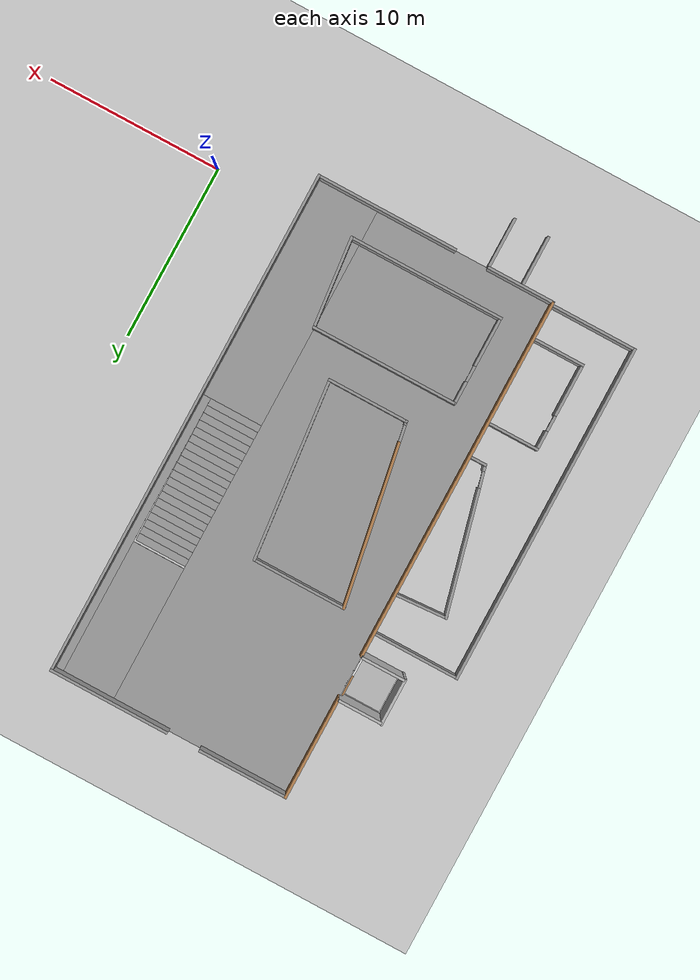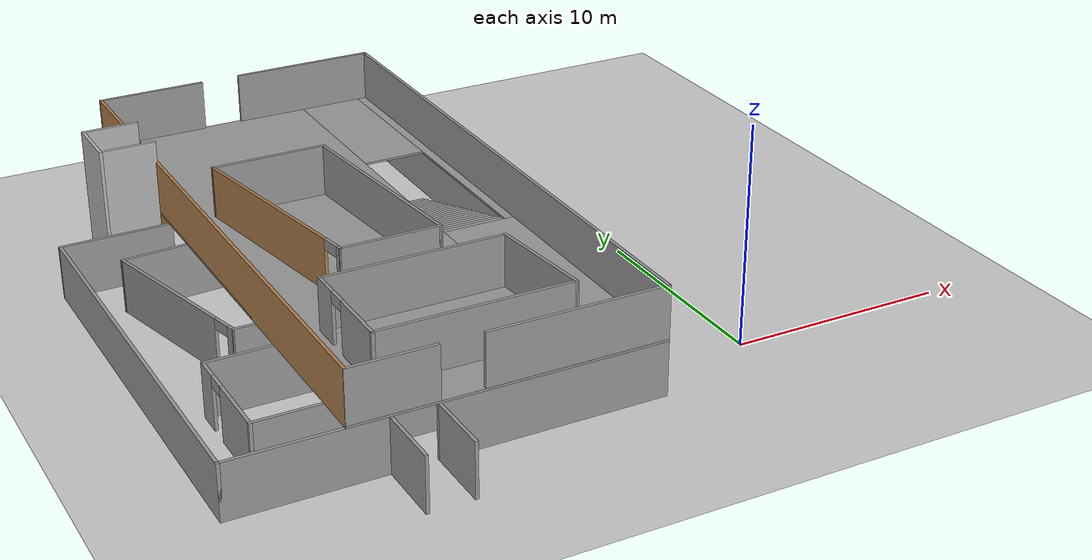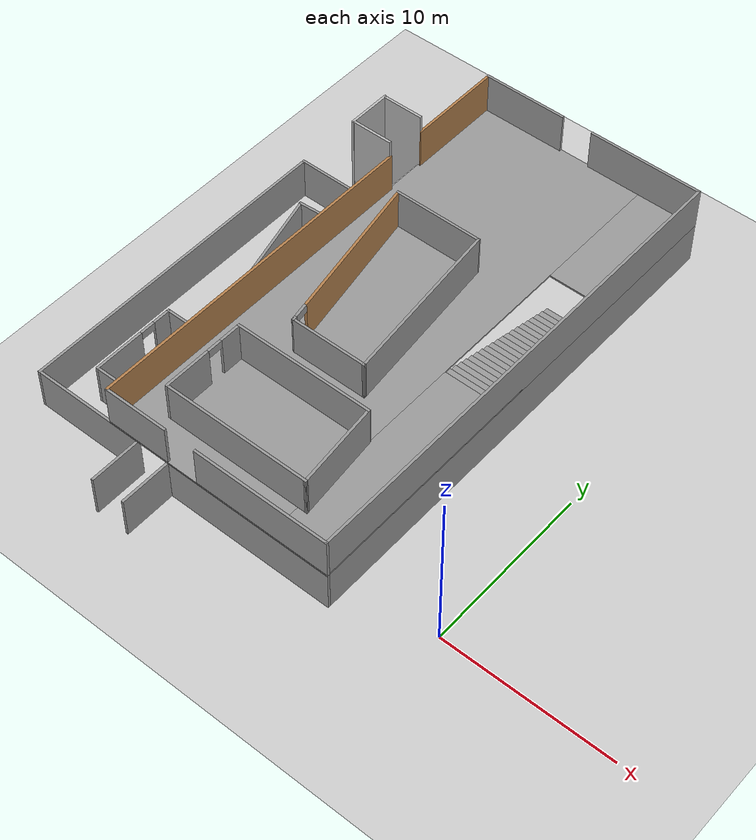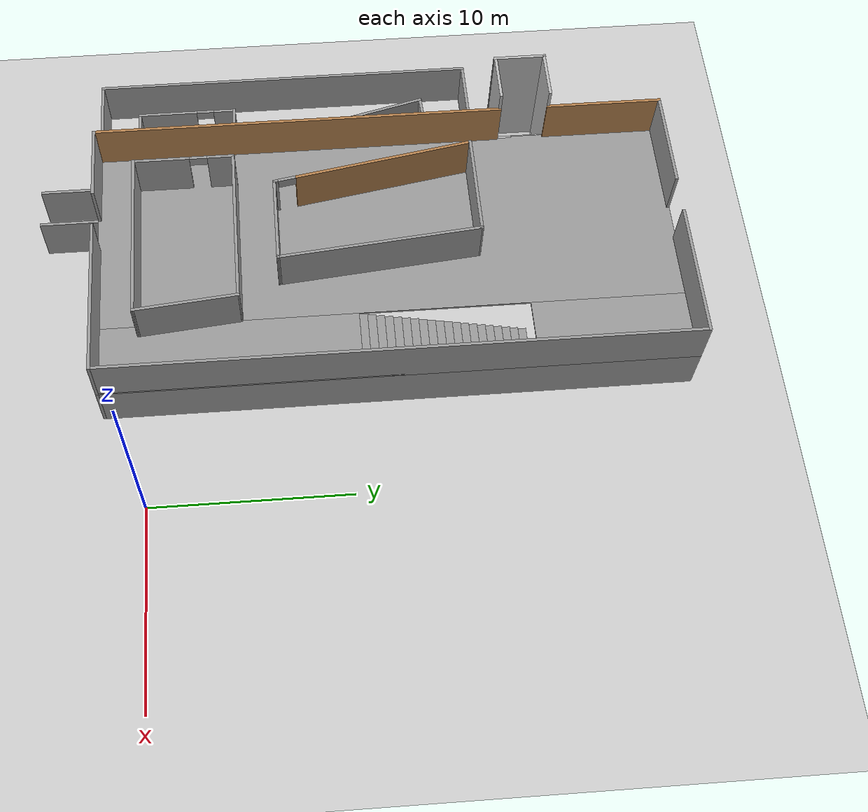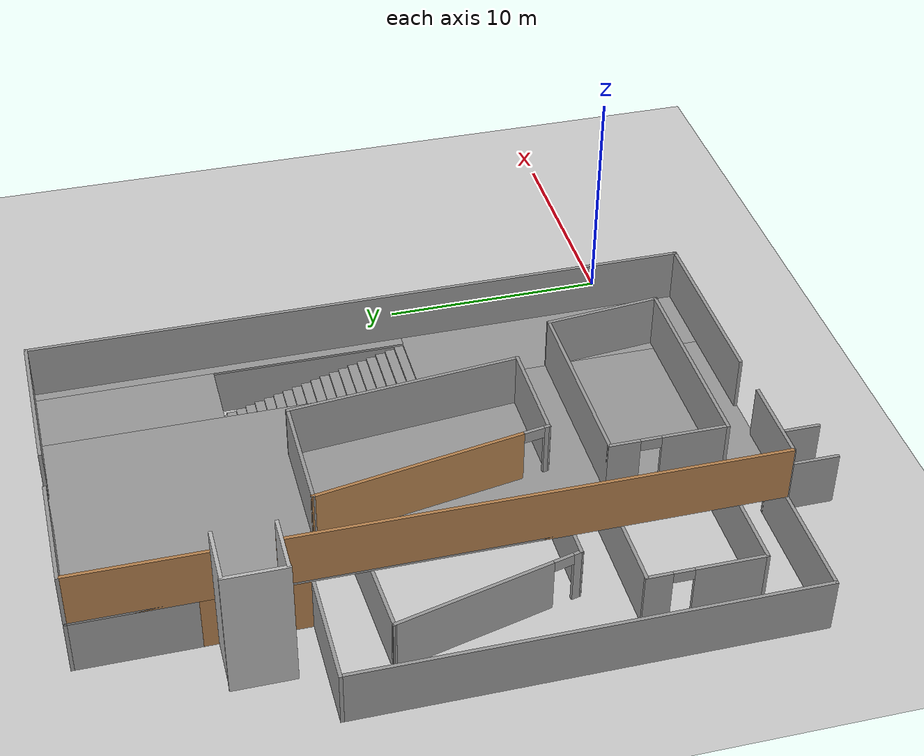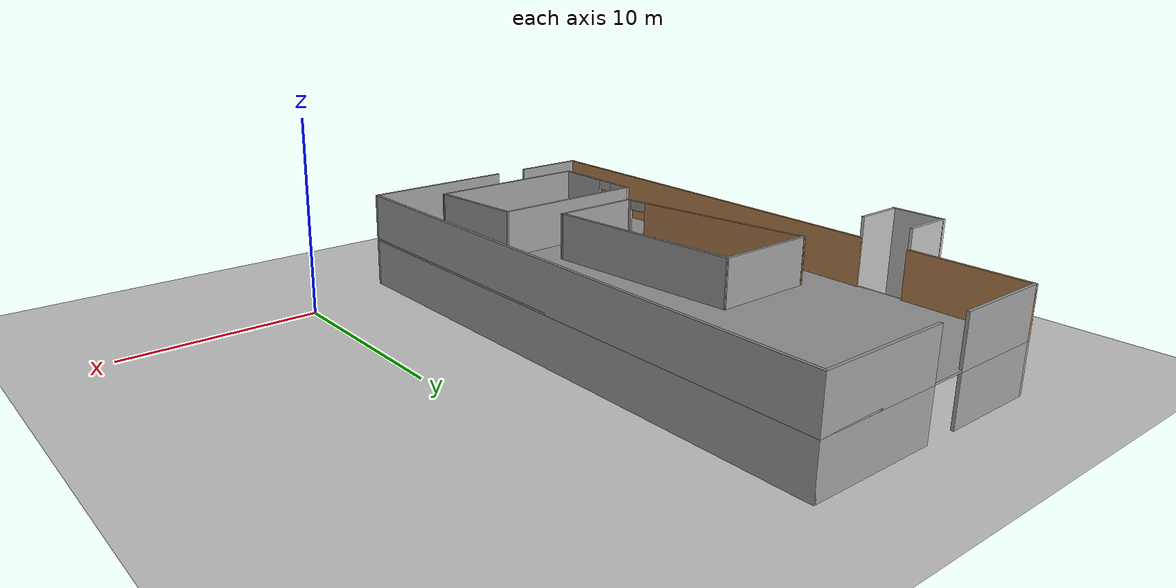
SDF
<?xml version="1.0" ?>
<sdf version="1.5">
  <world name="default">

    <!-- A global light source -->
    <include>
      <uri>model://sun</uri>
    </include>

    <!-- A ground plane -->
    <include>
      <uri>model://ground_plane</uri>
    </include>

    <!-- World plugin that publishes event messages.
         The topics used in these messages match up with topics used by the
         plugin in the elevator model below.
    -->
    <plugin filename="libSimEventsPlugin.so" name="elevator_event_plugin">
      <!-- Region on the ground floor, in front of the elevator -->
      <region>
        <name>region1</name>
        <volume>
          <min>-18.88 20 1</min>
          <max>-18.5 20.3 1.25</max>
        </volume>
      </region>

         <!-- Region on the ground floor inside the elevator-->
      <region>
        <name>region1_inside</name>
        <volume>
          <min>-19.7 19.1 0</min>
          <max>-19.1 19.8 1</max>
        </volume>
      </region>

          <!-- Region on the first floor inside the elevator-->
      <region>
        <name>region2_inside</name>
        <volume>
          <min>-19.7 19.1 2.58</min>
          <max>-19.1 19.8 2.8</max>
        </volume>
      </region>

      <!-- Region on the first floor, in front of the elevator -->
      <region>
        <name>region2</name>
        <volume>
          <min>-18.88 20 3.6</min>
          <max>-18.5 20.3 3.8</max>
        </volume>
      </region>

      <!-- Event publisher for ground floor-->
      <event>
        <name>region1_event</name>
        <type>occupied</type>
        <region>region1</region>
        <topic>~/elevator</topic>
        <msg_data>0</msg_data>
      </event>

      <!-- Event publisher for first floor-->
      <event>
        <name>region2_event</name>
        <type>occupied</type>
        <region>region2</region>

        <topic>~/elevator</topic>
        <msg_data>1</msg_data>
      </event>

      <!-- Event publisher up to first floor-->
      <event>
        <name>region2_1_event</name>
        <type>occupied</type>

        <region>region1_inside</region>
        <topic>~/elevator</topic>
        <msg_data>1</msg_data>
      </event>

       <!-- Event publisher down to ground floor-->
      <event>
        <name>region1_2_event</name>
        <type>occupied</type>
        <region>region2_inside</region>
        <topic>~/elevator</topic>
        <msg_data>0</msg_data>
      </event>
    </plugin>

    <!-- The elevator car -->
    <model name="elevator">
      <pose>-20 20 0.001 0 0 0</pose>
      <link name="link">
        <inertial>
          <mass>800</mass>
        </inertial>

        <collision name="floor_collision">
          <geometry>
            <box>
              <size>2.25 2.25 0.001</size>
            </box>
          </geometry>
        </collision>
        <visual name="floor_visual">
          <geometry>
            <box>
              <size>2.25 2.25 0.001</size>
            </box>
          </geometry>
        </visual>

        <!-- wall1_collision is the wall to the right of the door, when
             facing the door -->
        <collision name="wall1_collision">
          <pose>1.0745 0.5725 1.125 0 0 0</pose>
          <geometry>
            <box>
              <size>0.1 1.15 2.25</size>
            </box>
          </geometry>
        </collision>
        <visual name="wall1_visual">
          <pose>1.0745 0.5725 1.125 0 0 0</pose>
          <geometry>
            <box>
              <size>0.1 1.15 2.25</size>
            </box>
          </geometry>
          <material>
            <script>
              <name>Gazebo/Wood </name>
            </script>
          </material>
        </visual>

             <collision name="wall1_collision_bot">
          <pose>1.12 0.3 1.125 0 0 0</pose>
          <geometry>
            <box>
              <size>0.01 0.09 0.36</size>
            </box>
          </geometry>
        </collision>
        <visual name="wall1_visual_bot">
          <pose>1.12 0.25 1.125 0 0 0</pose>
          <geometry>
            <box>
              <size>0.01 0.09 0.36</size>
            </box>
          </geometry>
          <material>
                      <script>
            <uri>model://elevator_shaft/materials/scripts</uri>
            <uri>model://elevator_shaft/materials/textures</uri>
            <name>Up_down/Diffuse</name>
          </script>
          </material>
        </visual>

        <!-- wall2_collision is the wall to the left of the door, when
             facing the door -->
        <collision name="wall2_collision">
          <pose>1.0745 -1.0625 1.125 0 0 0</pose>
          <geometry>
            <box>
              <size>0.1 0.125 2.25</size>
            </box>
          </geometry>
        </collision>
        <visual name="wall2_visual">
          <pose>1.0745 -1.0625 1.125 0 0 0</pose>
          <geometry>
            <box>
              <size>0.1 0.125 2.25</size>
            </box>
          </geometry>
          <material>
            <script>
              <name>Gazebo/Wood </name>
            </script>
          </material>
        </visual>
      </link>

      <link name="door">
        <pose>1.0745 -0.5 1.125 0 0 0</pose>
        <collision name="collision">
          <geometry>
            <box>
              <size>0.08 1.0 2.25</size>
            </box>
          </geometry>
        </collision>
        <visual name="visual">
        <material>
          <script>
            <uri>model://elevator_door/materials/scripts</uri>
            <uri>model://elevator_door/materials/textures</uri>
            <name>Elevator_door/Picture</name>
          </script>
          <shader type='pixel'>
            <normal_map>__default__</normal_map>
          </shader>
          <ambient>1 1 1 1</ambient>
          <diffuse>1 1 1 1</diffuse>
          <specular>0 0 0 1</specular>
          <emissive>0 0 0 1</emissive>
        </material>
          <geometry>
            <box>
              <size>0.08 1.0 2.25</size>
            </box>
          </geometry>
        </visual>
      </link>

      <joint name="door" type="prismatic">
        <parent>link</parent>
        <child>door</child>
        <axis>
          <xyz>0 1 0</xyz>
          <limit>
            <lower>0</lower>
            <upper>1</upper>
            <effort>0.525</effort>
          </limit>

          <dynamics>
            <damping>1</damping>
          </dynamics>
        </axis>
      </joint>

      <joint name="lift" type="prismatic">
        <parent>world</parent>
        <child>link</child>
        <axis>
          <xyz>0 0 1</xyz>
          <limit>
            <lower>0</lower>
            <upper>10</upper>
            <effort>100000</effort>
          </limit>

          <dynamics>
            <damping>50</damping>
          </dynamics>
        </axis>
        <physics>
          <ode>
            <implicit_spring_damper>1</implicit_spring_damper>
          </ode>
        </physics>
      </joint>

      <!-- Plugin to control the elevator -->
      <plugin filename="libElevatorPlugin.so" name="elevator_plugin">
        <lift_joint>elevator::lift</lift_joint>
        <door_joint>elevator::door</door_joint>
        <floor_height>2.675</floor_height>

        <!-- Time the elevator door will stay open in seconds -->
        <door_wait_time>10</door_wait_time>

        <!-- This topic is used to control the elevator -->
        <topic>~/elevator</topic>
      </plugin>
    </model>

    <!-- Elevator shaft -->
    <model name="elevator_shaft">
        <pose>-20 20 0.00 0 0 0</pose>
      <static>true</static>
      <link name="link">
        <collision name="shaft_wall1_collision">
          <pose>0 1.25 3 0 0 0</pose>
          <geometry>
            <box>
              <size>2.5 0.15 6</size>
            </box>
          </geometry>
        </collision>
        <visual name="shaft_wall1_visual">
          <pose>0 1.25 3 0 0 0</pose>
          <geometry>
            <box>
              <size>2.5 0.15 6</size>
            </box>
          </geometry>
        </visual>

        <collision name="shaft_wall2_collision">
          <pose>0 -1.25 3 0 0 0</pose>
          <geometry>
            <box>
              <size>2.5 0.15 6</size>
            </box>
          </geometry>
        </collision>
        <visual name="shaft_wall2_visual">
          <pose>0 -1.25 3 0 0 0</pose>
          <geometry>
            <box>
              <size>2.5 0.15 6</size>
            </box>
          </geometry>
        </visual>

        <collision name="shaft_wall3_collision">
          <pose>-1.25 0 3 0 0 0</pose>
          <geometry>
            <box>
              <size>0.15 2.7 6</size>
            </box>
          </geometry>
        </collision>
        <visual name="shaft_wall3_visual">
          <pose>-1.25 0 3 0 0 0</pose>
          <geometry>
            <box>
              <size>0.15 2.7 6</size>
            </box>
          </geometry>
        </visual>

        <collision name="floor0_collision">
          <pose>1.19 0 0.001 0 0 0</pose>
          <geometry>
            <box>
              <size>0.12 2.5 0.001</size>
            </box>
          </geometry>
        </collision>
        <visual name="floor0_visual">
          <pose>1.19 0 0.001 0 0 0</pose>
          <geometry>
            <box>
              <size>0.12 2.5 0.001</size>
            </box>
          </geometry>
        </visual>

        <collision name="floor1_collision">
          <pose>1.19 0 2.525 0 0 0</pose>
          <geometry>
            <box>
              <size>0.12 2.5 0.15</size>
            </box>
          </geometry>
        </collision>
        <visual name="floor1_visual">
          <pose>1.19 0 2.525 0 0 0</pose>
          <geometry>
            <box>
              <size>0.12 2.5 0.15</size>
            </box>
          </geometry>
        </visual>
      </link>
    </model>

  <model name='elevator_2.5'>
    <pose frame=''>-18.75 20 0 0 -0 0</pose>
    <link name='Wall_0'>
      <collision name='Wall_0_Collision'>
        <geometry>
          <box>
            <size>1.4 0.15 2.5</size>
          </box>
        </geometry>
        <pose frame=''>0 0 1.25 0 -0 0</pose>
      </collision>
      <visual name='Wall_0_Visual'>
        <pose frame=''>0 0 1.25 0 -0 0</pose>
          <meta>
            <layer>0</layer>
          </meta>
        <geometry>
          <box>
            <size>1.4 0.15 2.5</size>
          </box>
        </geometry>
       <material>
            <script>
              <name>Gazebo/Wood </name>
            </script>
          </material>
      </visual>
      <pose frame=''>0 -1.875 0 0 0 -1.5708</pose>
    </link>
    <link name='Wall_2'>
      <collision name='Wall_2_Collision'>
        <geometry>
          <box>
            <size>1.4 0.15 2.5</size>
          </box>
        </geometry>
        <pose frame=''>0 0 1.25 0 -0 0</pose>
      </collision>
      <visual name='Wall_2_Visual'>
        <pose frame=''>0 0 1.25 0 -0 0</pose>
        <geometry>
          <box>
            <size>1.4 0.15 2.5</size>
          </box>
        </geometry>
        <material>
            <script>
              <name>Gazebo/Wood </name>
            </script>
          </material>
      </visual>
      <pose frame=''>0 1.875 0 0 0 -1.5708</pose>
    </link>
    <static>1</static>
  </model>

  <model name='Building_37'>
    <pose frame=''>-14.375 11 0 0 -0 0</pose>
    <link name='Floor_0'>
      <pose frame=''>2.5 1.3455 2.5 0 -0 0</pose>
      <visual name='Floor_0_Visual_0'>
        <pose frame=''>-1.7875 0.15 0.05 0 -0 0</pose>
          <meta>
            <layer>1</layer>
          </meta>
        <geometry>
          <box>
            <size>10.325 29.15 0.1</size>
          </box>
        </geometry>
        <material>
          <script>
            <uri>file://media/materials/scripts/gazebo.material</uri>
            <name>Gazebo/Grey</name>
          </script>
          <ambient>1 1 1 1</ambient>
        </material>
      </visual>
      <collision name='Floor_0_Collision_0'>
        <geometry>
          <box>
            <size>10.325 29.15 0.1</size>
          </box>
        </geometry>
        <pose frame=''>-1.7875 0.15 0.05 0 -0 0</pose>
      </collision>
      <visual name='Floor_0_Visual_1'>
        <pose frame=''>5.1625 -8.0 0.05 0 -0 0</pose>
          <meta>
            <layer>1</layer>
          </meta>
        <geometry>
          <box>
            <size>3.575 12.85 0.1</size>
          </box>
        </geometry>
        <material>
          <script>
            <uri>file://media/materials/scripts/gazebo.material</uri>
            <name>Gazebo/Grey</name>
          </script>
          <ambient>1 1 1 1</ambient>
        </material>
      </visual>
      <collision name='Floor_0_Collision_1'>
        <geometry>
          <box>
            <size>3.575 12.85 0.1</size>
          </box>
        </geometry>
        <pose frame=''>5.1625 -8.0 0.05 0 -0 0</pose>
      </collision>
      <visual name='Floor_0_Visual_2'>
        <pose frame=''>6.6625 6.567 0.05 0 -0 0</pose>
          <meta>
            <layer>1</layer>
          </meta>
        <geometry>
          <box>
            <size>0.575 16.325 0.1</size>
          </box>
        </geometry>
        <material>
          <script>
            <uri>file://media/materials/scripts/gazebo.material</uri>
            <name>Gazebo/Grey</name>
          </script>
          <ambient>1 1 1 1</ambient>
        </material>
      </visual>
      <collision name='Floor_0_Collision_2'>
        <geometry>
          <box>
            <size>0.575 16.325 0.1</size>
          </box>
        </geometry>
        <pose frame=''>6.6625 6.567 0.05 0 -0 0</pose>
      </collision>
      <visual name='Floor_0_Visual_3'>
        <pose frame=''>4.875 10.817 0.05 0 -0 0</pose>
          <meta>
            <layer>1</layer>
          </meta>
        <geometry>
          <box>
            <size>3 7.825 0.1</size>
          </box>
        </geometry>
        <material>
          <script>
            <uri>file://media/materials/scripts/gazebo.material</uri>
            <name>Gazebo/Grey</name>
          </script>
          <ambient>1 1 1 1</ambient>
        </material>
      </visual>
      <collision name='Floor_0_Collision_3'>
        <geometry>
          <box>
            <size>3 7.825 0.1</size>
          </box>
        </geometry>
        <pose frame=''>4.875 10.817 0.05 0 -0 0</pose>
      </collision>
    </link>
    <link name='Stairs_1'>
      <visual name='Stairs_1_Visual_0'>
        <pose frame=''>7.375 8.0375 0.0625 0 -0 0</pose>
          <meta>
            <layer>2</layer>
          </meta>
        <geometry>
          <box>
            <size>3 0.425 0.125</size>
          </box>
        </geometry>
        <material>
          <script>
            <uri>file://media/materials/scripts/gazebo.material</uri>
            <name>Gazebo/Grey</name>
          </script>
          <ambient>1 1 1 1</ambient>
        </material>
      </visual>
      <collision name='Stairs_1_Collision_0'>
        <geometry>
          <box>
            <size>3 0.425 0.125</size>
          </box>
        </geometry>
        <pose frame=''>7.375 8.0375 0.0625 0 -0 0</pose>
      </collision>
      <visual name='Stairs_1_Visual_1'>
        <pose frame=''>7.375 7.6125 0.1875 0 -0 0</pose>
          <meta>
            <layer>2</layer>
          </meta>
        <geometry>
          <box>
            <size>3 0.425 0.125</size>
          </box>
        </geometry>
        <material>
          <script>
            <uri>file://media/materials/scripts/gazebo.material</uri>
            <name>Gazebo/Grey</name>
          </script>
          <ambient>1 1 1 1</ambient>
        </material>
      </visual>
      <collision name='Stairs_1_Collision_1'>
        <geometry>
          <box>
            <size>3 0.425 0.125</size>
          </box>
        </geometry>
        <pose frame=''>7.375 7.6125 0.1875 0 -0 0</pose>
      </collision>
      <visual name='Stairs_1_Visual_2'>
        <pose frame=''>7.375 7.1875 0.3125 0 -0 0</pose>
          <meta>
            <layer>2</layer>
          </meta>
        <geometry>
          <box>
            <size>3 0.425 0.125</size>
          </box>
        </geometry>
        <material>
          <script>
            <uri>file://media/materials/scripts/gazebo.material</uri>
            <name>Gazebo/Grey</name>
          </script>
          <ambient>1 1 1 1</ambient>
        </material>
      </visual>
      <collision name='Stairs_1_Collision_2'>
        <geometry>
          <box>
            <size>3 0.425 0.125</size>
          </box>
        </geometry>
        <pose frame=''>7.375 7.1875 0.3125 0 -0 0</pose>
      </collision>
      <visual name='Stairs_1_Visual_3'>
        <pose frame=''>7.375 6.7625 0.4375 0 -0 0</pose>
          <meta>
            <layer>2</layer>
          </meta>
        <geometry>
          <box>
            <size>3 0.425 0.125</size>
          </box>
        </geometry>
        <material>
          <script>
            <uri>file://media/materials/scripts/gazebo.material</uri>
            <name>Gazebo/Grey</name>
          </script>
          <ambient>1 1 1 1</ambient>
        </material>
      </visual>
      <collision name='Stairs_1_Collision_3'>
        <geometry>
          <box>
            <size>3 0.425 0.125</size>
          </box>
        </geometry>
        <pose frame=''>7.375 6.7625 0.4375 0 -0 0</pose>
      </collision>
      <visual name='Stairs_1_Visual_4'>
        <pose frame=''>7.375 6.3375 0.5625 0 -0 0</pose>
          <meta>
            <layer>2</layer>
          </meta>
        <geometry>
          <box>
            <size>3 0.425 0.125</size>
          </box>
        </geometry>
        <material>
          <script>
            <uri>file://media/materials/scripts/gazebo.material</uri>
            <name>Gazebo/Grey</name>
          </script>
          <ambient>1 1 1 1</ambient>
        </material>
      </visual>
      <collision name='Stairs_1_Collision_4'>
        <geometry>
          <box>
            <size>3 0.425 0.125</size>
          </box>
        </geometry>
        <pose frame=''>7.375 6.3375 0.5625 0 -0 0</pose>
      </collision>
      <visual name='Stairs_1_Visual_5'>
        <pose frame=''>7.375 5.9125 0.6875 0 -0 0</pose>
          <meta>
            <layer>2</layer>
          </meta>
        <geometry>
          <box>
            <size>3 0.425 0.125</size>
          </box>
        </geometry>
        <material>
          <script>
            <uri>file://media/materials/scripts/gazebo.material</uri>
            <name>Gazebo/Grey</name>
          </script>
          <ambient>1 1 1 1</ambient>
        </material>
      </visual>
      <collision name='Stairs_1_Collision_5'>
        <geometry>
          <box>
            <size>3 0.425 0.125</size>
          </box>
        </geometry>
        <pose frame=''>7.375 5.9125 0.6875 0 -0 0</pose>
      </collision>
      <visual name='Stairs_1_Visual_6'>
        <pose frame=''>7.375 5.4875 0.8125 0 -0 0</pose>
          <meta>
            <layer>2</layer>
          </meta>
        <geometry>
          <box>
            <size>3 0.425 0.125</size>
          </box>
        </geometry>
        <material>
          <script>
            <uri>file://media/materials/scripts/gazebo.material</uri>
            <name>Gazebo/Grey</name>
          </script>
          <ambient>1 1 1 1</ambient>
        </material>
      </visual>
      <collision name='Stairs_1_Collision_6'>
        <geometry>
          <box>
            <size>3 0.425 0.125</size>
          </box>
        </geometry>
        <pose frame=''>7.375 5.4875 0.8125 0 -0 0</pose>
      </collision>
      <visual name='Stairs_1_Visual_7'>
        <pose frame=''>7.375 5.0625 0.9375 0 -0 0</pose>
          <meta>
            <layer>2</layer>
          </meta>
        <geometry>
          <box>
            <size>3 0.425 0.125</size>
          </box>
        </geometry>
        <material>
          <script>
            <uri>file://media/materials/scripts/gazebo.material</uri>
            <name>Gazebo/Grey</name>
          </script>
          <ambient>1 1 1 1</ambient>
        </material>
      </visual>
      <collision name='Stairs_1_Collision_7'>
        <geometry>
          <box>
            <size>3 0.425 0.125</size>
          </box>
        </geometry>
        <pose frame=''>7.375 5.0625 0.9375 0 -0 0</pose>
      </collision>
      <visual name='Stairs_1_Visual_8'>
        <pose frame=''>7.375 4.6375 1.0625 0 -0 0</pose>
          <meta>
            <layer>2</layer>
          </meta>
        <geometry>
          <box>
            <size>3 0.425 0.125</size>
          </box>
        </geometry>
        <material>
          <script>
            <uri>file://media/materials/scripts/gazebo.material</uri>
            <name>Gazebo/Grey</name>
          </script>
          <ambient>1 1 1 1</ambient>
        </material>
      </visual>
      <collision name='Stairs_1_Collision_8'>
        <geometry>
          <box>
            <size>3 0.425 0.125</size>
          </box>
        </geometry>
        <pose frame=''>7.375 4.6375 1.0625 0 -0 0</pose>
      </collision>
      <visual name='Stairs_1_Visual_9'>
        <pose frame=''>7.375 4.2125 1.1875 0 -0 0</pose>
          <meta>
            <layer>2</layer>
          </meta>
        <geometry>
          <box>
            <size>3 0.425 0.125</size>
          </box>
        </geometry>
        <material>
          <script>
            <uri>file://media/materials/scripts/gazebo.material</uri>
            <name>Gazebo/Grey</name>
          </script>
          <ambient>1 1 1 1</ambient>
        </material>
      </visual>
      <collision name='Stairs_1_Collision_9'>
        <geometry>
          <box>
            <size>3 0.425 0.125</size>
          </box>
        </geometry>
        <pose frame=''>7.375 4.2125 1.1875 0 -0 0</pose>
      </collision>
      <visual name='Stairs_1_Visual_10'>
        <pose frame=''>7.375 3.7875 1.3125 0 -0 0</pose>
          <meta>
            <layer>2</layer>
          </meta>
        <geometry>
          <box>
            <size>3 0.425 0.125</size>
          </box>
        </geometry>
        <material>
          <script>
            <uri>file://media/materials/scripts/gazebo.material</uri>
            <name>Gazebo/Grey</name>
          </script>
          <ambient>1 1 1 1</ambient>
        </material>
      </visual>
      <collision name='Stairs_1_Collision_10'>
        <geometry>
          <box>
            <size>3 0.425 0.125</size>
          </box>
        </geometry>
        <pose frame=''>7.375 3.7875 1.3125 0 -0 0</pose>
      </collision>
      <visual name='Stairs_1_Visual_11'>
        <pose frame=''>7.375 3.3625 1.4375 0 -0 0</pose>
          <meta>
            <layer>2</layer>
          </meta>
        <geometry>
          <box>
            <size>3 0.425 0.125</size>
          </box>
        </geometry>
        <material>
          <script>
            <uri>file://media/materials/scripts/gazebo.material</uri>
            <name>Gazebo/Grey</name>
          </script>
          <ambient>1 1 1 1</ambient>
        </material>
      </visual>
      <collision name='Stairs_1_Collision_11'>
        <geometry>
          <box>
            <size>3 0.425 0.125</size>
          </box>
        </geometry>
        <pose frame=''>7.375 3.3625 1.4375 0 -0 0</pose>
      </collision>
      <visual name='Stairs_1_Visual_12'>
        <pose frame=''>7.375 2.9375 1.5625 0 -0 0</pose>
          <meta>
            <layer>2</layer>
          </meta>
        <geometry>
          <box>
            <size>3 0.425 0.125</size>
          </box>
        </geometry>
        <material>
          <script>
            <uri>file://media/materials/scripts/gazebo.material</uri>
            <name>Gazebo/Grey</name>
          </script>
          <ambient>1 1 1 1</ambient>
        </material>
      </visual>
      <collision name='Stairs_1_Collision_12'>
        <geometry>
          <box>
            <size>3 0.425 0.125</size>
          </box>
        </geometry>
        <pose frame=''>7.375 2.9375 1.5625 0 -0 0</pose>
      </collision>
      <visual name='Stairs_1_Visual_13'>
        <pose frame=''>7.375 2.5125 1.6875 0 -0 0</pose>
          <meta>
            <layer>2</layer>
          </meta>
        <geometry>
          <box>
            <size>3 0.425 0.125</size>
          </box>
        </geometry>
        <material>
          <script>
            <uri>file://media/materials/scripts/gazebo.material</uri>
            <name>Gazebo/Grey</name>
          </script>
          <ambient>1 1 1 1</ambient>
        </material>
      </visual>
      <collision name='Stairs_1_Collision_13'>
        <geometry>
          <box>
            <size>3 0.425 0.125</size>
          </box>
        </geometry>
        <pose frame=''>7.375 2.5125 1.6875 0 -0 0</pose>
      </collision>
      <visual name='Stairs_1_Visual_14'>
        <pose frame=''>7.375 2.0875 1.8125 0 -0 0</pose>
          <meta>
            <layer>2</layer>
          </meta>
        <geometry>
          <box>
            <size>3 0.425 0.125</size>
          </box>
        </geometry>
        <material>
          <script>
            <uri>file://media/materials/scripts/gazebo.material</uri>
            <name>Gazebo/Grey</name>
          </script>
          <ambient>1 1 1 1</ambient>
        </material>
      </visual>
      <collision name='Stairs_1_Collision_14'>
        <geometry>
          <box>
            <size>3 0.425 0.125</size>
          </box>
        </geometry>
        <pose frame=''>7.375 2.0875 1.8125 0 -0 0</pose>
      </collision>
      <visual name='Stairs_1_Visual_15'>
        <pose frame=''>7.375 1.6625 1.9375 0 -0 0</pose>
          <meta>
            <layer>2</layer>
          </meta>
        <geometry>
          <box>
            <size>3 0.425 0.125</size>
          </box>
        </geometry>
        <material>
          <script>
            <uri>file://media/materials/scripts/gazebo.material</uri>
            <name>Gazebo/Grey</name>
          </script>
          <ambient>1 1 1 1</ambient>
        </material>
      </visual>
      <collision name='Stairs_1_Collision_15'>
        <geometry>
          <box>
            <size>3 0.425 0.125</size>
          </box>
        </geometry>
        <pose frame=''>7.375 1.6625 1.9375 0 -0 0</pose>
      </collision>
      <visual name='Stairs_1_Visual_16'>
        <pose frame=''>7.375 1.2375 2.0625 0 -0 0</pose>
          <meta>
            <layer>2</layer>
          </meta>
        <geometry>
          <box>
            <size>3 0.425 0.125</size>
          </box>
        </geometry>
        <material>
          <script>
            <uri>file://media/materials/scripts/gazebo.material</uri>
            <name>Gazebo/Grey</name>
          </script>
          <ambient>1 1 1 1</ambient>
        </material>
      </visual>
      <collision name='Stairs_1_Collision_16'>
        <geometry>
          <box>
            <size>3 0.425 0.125</size>
          </box>
        </geometry>
        <pose frame=''>7.375 1.2375 2.0625 0 -0 0</pose>
      </collision>
      <visual name='Stairs_1_Visual_17'>
        <pose frame=''>7.375 0.8125 2.1875 0 -0 0</pose>
          <meta>
            <layer>2</layer>
          </meta>
        <geometry>
          <box>
            <size>3 0.425 0.125</size>
          </box>
        </geometry>
        <material>
          <script>
            <uri>file://media/materials/scripts/gazebo.material</uri>
            <name>Gazebo/Grey</name>
          </script>
          <ambient>1 1 1 1</ambient>
        </material>
      </visual>
      <collision name='Stairs_1_Collision_17'>
        <geometry>
          <box>
            <size>3 0.425 0.125</size>
          </box>
        </geometry>
        <pose frame=''>7.375 0.8125 2.1875 0 -0 0</pose>
      </collision>
      <visual name='Stairs_1_Visual_18'>
        <pose frame=''>7.375 0.3875 2.3125 0 -0 0</pose>
          <meta>
            <layer>2</layer>
          </meta>
        <geometry>
          <box>
            <size>3 0.425 0.125</size>
          </box>
        </geometry>
        <material>
          <script>
            <uri>file://media/materials/scripts/gazebo.material</uri>
            <name>Gazebo/Grey</name>
          </script>
          <ambient>1 1 1 1</ambient>
        </material>
      </visual>
      <collision name='Stairs_1_Collision_18'>
        <geometry>
          <box>
            <size>3 0.425 0.125</size>
          </box>
        </geometry>
        <pose frame=''>7.375 0.3875 2.3125 0 -0 0</pose>
      </collision>
      <visual name='Stairs_1_Visual_19'>
        <pose frame=''>7.375 -0.037501 2.4375 0 -0 0</pose>
          <meta>
            <layer>2</layer>
          </meta>
        <geometry>
          <box>
            <size>3 0.425 0.125</size>
          </box>
        </geometry>
        <material>
          <script>
            <uri>file://media/materials/scripts/gazebo.material</uri>
            <name>Gazebo/Grey</name>
          </script>
          <ambient>1 1 1 1</ambient>
        </material>
      </visual>
      <collision name='Stairs_1_Collision_19'>
        <geometry>
          <box>
            <size>3 0.425 0.125</size>
          </box>
        </geometry>
        <pose frame=''>7.375 -0.037501 2.4375 0 -0 0</pose>
      </collision>
    </link>
    <link name='Wall_10'>
      <collision name='Wall_10_Collision'>
        <geometry>
          <box>
            <size>19.65 0.15 2.5</size>
          </box>
        </geometry>
        <pose frame=''>0 0 1.25 0 -0 0</pose>
      </collision>
      <visual name='Wall_10_Visual'>
        <pose frame=''>0 0 1.25 0 -0 0</pose>
        <geometry>
          <box>
            <size>19.65 0.15 2.5</size>
          </box>
        </geometry>
        <material>
          <script>
            <uri>file://media/materials/scripts/gazebo.material</uri>
            <name>Gazebo/Grey</name>
          </script>
          <ambient>1 1 1 1</ambient>
        </material>
      </visual>
      <pose frame=''>-9.375 -3.25 0 0 0 -1.5708</pose>
    </link>
    <link name='Wall_14'>
      <pose frame=''>-6.375 0 0 0 0 -1.32582</pose>
      <visual name='Wall_14_Visual_0'>
        <pose frame=''>-0.663599 0 1.25 0 -0 0</pose>
        <geometry>
          <box>
            <size>7.06901 0.15 2.5</size>
          </box>
        </geometry>
        <material>
          <script>
            <uri>file://media/materials/scripts/gazebo.material</uri>
            <name>Gazebo/Grey</name>
          </script>
          <ambient>1 1 1 1</ambient>
        </material>
      </visual>
      <collision name='Wall_14_Collision_0'>
        <geometry>
          <box>
            <size>7.06901 0.15 2.5</size>
          </box>
        </geometry>
        <pose frame=''>-0.663599 0 1.25 0 -0 0</pose>
      </collision>
      <visual name='Wall_14_Visual_1'>
        <pose frame=''>3.98451 0 1.25 0 -0 0</pose>
        <geometry>
          <box>
            <size>0.427197 0.15 2.5</size>
          </box>
        </geometry>
        <material>
          <script>
            <uri>file://media/materials/scripts/gazebo.material</uri>
            <name>Gazebo/Grey</name>
          </script>
          <ambient>1 1 1 1</ambient>
        </material>
      </visual>
      <collision name='Wall_14_Collision_1'>
        <geometry>
          <box>
            <size>0.427197 0.15 2.5</size>
          </box>
        </geometry>
        <pose frame=''>3.98451 0 1.25 0 -0 0</pose>
      </collision>
      <visual name='Wall_14_Visual_2'>
        <pose frame=''>3.32091 0 2.25 0 -0 0</pose>
        <geometry>
          <box>
            <size>0.9 0.15 0.5</size>
          </box>
        </geometry>
        <material>
          <script>
            <uri>file://media/materials/scripts/gazebo.material</uri>
            <name>Gazebo/Grey</name>
          </script>
          <ambient>1 1 1 1</ambient>
        </material>
      </visual>
      <collision name='Wall_14_Collision_2'>
        <geometry>
          <box>
            <size>0.9 0.15 0.5</size>
          </box>
        </geometry>
        <pose frame=''>3.32091 0 2.25 0 -0 0</pose>
      </collision>
    </link>
    <link name='Wall_15'>
      <collision name='Wall_15_Collision'>
        <geometry>
          <box>
            <size>6.15 0.15 2.5</size>
          </box>
        </geometry>
        <pose frame=''>0 0 1.25 0 -0 0</pose>
      </collision>
      <visual name='Wall_15_Visual'>
        <pose frame=''>0 0 1.25 0 -0 0</pose>
        <geometry>
          <box>
            <size>6.15 0.15 2.5</size>
          </box>
        </geometry>
        <material>
          <script>
            <uri>file://media/materials/scripts/gazebo.material</uri>
            <name>Gazebo/Grey</name>
          </script>
          <ambient>1 1 1 1</ambient>
        </material>
      </visual>
      <pose frame=''>-2.375 -4 0 0 -0 0</pose>
    </link>
    <link name='Wall_16'>
      <collision name='Wall_16_Collision'>
        <geometry>
          <box>
            <size>8.65 0.15 2.5</size>
          </box>
        </geometry>
        <pose frame=''>0 0 1.25 0 -0 0</pose>
      </collision>
      <visual name='Wall_16_Visual'>
        <pose frame=''>0 0 1.25 0 -0 0</pose>
        <geometry>
          <box>
            <size>8.65 0.15 2.5</size>
          </box>
        </geometry>
        <material>
          <script>
            <uri>file://media/materials/scripts/gazebo.material</uri>
            <name>Gazebo/Grey</name>
          </script>
          <ambient>1 1 1 1</ambient>
        </material>
      </visual>
      <pose frame=''>0.625 0.25 0 0 -0 1.5708</pose>
    </link>
    <link name='Wall_17'>
      <collision name='Wall_17_Collision'>
        <geometry>
          <box>
            <size>8.16561 0.15 2.5</size>
          </box>
        </geometry>
        <pose frame=''>0 0 1.25 0 -0 0</pose>
      </collision>
      <visual name='Wall_17_Visual'>
        <pose frame=''>0 0 1.25 0 -0 0</pose>
        <geometry>
          <box>
            <size>8.16561 0.15 2.5</size>
          </box>
        </geometry>
        <material>
          <script>
            <uri>file://media/materials/scripts/gazebo.material</uri>
            <name>Gazebo/Grey</name>
          </script>
          <ambient>1 1 1 1</ambient>
        </material>
      </visual>
      <pose frame=''>-3.375 4.25 0 0 0 -3.07917</pose>
    </link>
    <link name='Wall_19'>
      <collision name='Wall_19_Collision'>
        <geometry>
          <box>
            <size>9.15 0.15 2.5</size>
          </box>
        </geometry>
        <pose frame=''>0 0 1.25 0 -0 0</pose>
      </collision>
      <visual name='Wall_19_Visual'>
        <pose frame=''>0 0 1.25 0 -0 0</pose>
        <geometry>
          <box>
            <size>9.15 0.15 2.5</size>
          </box>
        </geometry>
        <material>
          <script>
            <uri>file://media/materials/scripts/gazebo.material</uri>
            <name>Gazebo/Grey</name>
          </script>
          <ambient>1 1 1 1</ambient>
        </material>
      </visual>
      <pose frame=''>-2.875 -6 0 0 -0 0</pose>
    </link>
    <link name='Wall_2'>
      <collision name='Wall_2_Collision'>
        <geometry>
          <box>
            <size>5.15 0.15 2.5</size>
          </box>
        </geometry>
        <pose frame=''>0 0 1.25 0 -0 0</pose>
      </collision>
      <visual name='Wall_2_Visual'>
        <pose frame=''>0 0 1.25 0 -0 0</pose>
        <geometry>
          <box>
            <size>5.15 0.15 2.5</size>
          </box>
        </geometry>
        <material>
          <script>
            <uri>file://media/materials/scripts/gazebo.material</uri>
            <name>Gazebo/Grey</name>
          </script>
          <ambient>1 1 1 1</ambient>
        </material>
      </visual>
      <pose frame=''>-4.375 13.5 0 0 0 -1.5708</pose>
    </link>
    <link name='Wall_20'>
      <collision name='Wall_20_Collision'>
        <geometry>
          <box>
            <size>5.15 0.15 2.5</size>
          </box>
        </geometry>
        <pose frame=''>0 0 1.25 0 -0 0</pose>
      </collision>
      <visual name='Wall_20_Visual'>
        <pose frame=''>0 0 1.25 0 -0 0</pose>
        <geometry>
          <box>
            <size>5.15 0.15 2.5</size>
          </box>
        </geometry>
        <material>
          <script>
            <uri>file://media/materials/scripts/gazebo.material</uri>
            <name>Gazebo/Grey</name>
          </script>
          <ambient>1 1 1 1</ambient>
        </material>
      </visual>
      <pose frame=''>1.625 -8.5 0 0 0 -1.5708</pose>
    </link>
    <link name='Wall_21'>
      <collision name='Wall_21_Collision'>
        <geometry>
          <box>
            <size>9.15 0.15 2.5</size>
          </box>
        </geometry>
        <pose frame=''>0 0 1.25 0 -0 0</pose>
      </collision>
      <visual name='Wall_21_Visual'>
        <pose frame=''>0 0 1.25 0 -0 0</pose>
        <geometry>
          <box>
            <size>9.15 0.15 2.5</size>
          </box>
        </geometry>
        <material>
          <script>
            <uri>file://media/materials/scripts/gazebo.material</uri>
            <name>Gazebo/Grey</name>
          </script>
          <ambient>1 1 1 1</ambient>
        </material>
      </visual>
      <pose frame=''>-2.875 -11 0 0 -0 3.14159</pose>
    </link>
    <link name='Wall_22'>
      <pose frame=''>-7.375 -8.5 0 0 -0 1.5708</pose>
      <visual name='Wall_22_Visual_0'>
        <pose frame=''>-1.02932 0 1.25 0 -0 0</pose>
        <geometry>
          <box>
            <size>3.09135 0.15 2.5</size>
          </box>
        </geometry>
        <material>
          <script>
            <uri>file://media/materials/scripts/gazebo.material</uri>
            <name>Gazebo/Grey</name>
          </script>
          <ambient>1 1 1 1</ambient>
        </material>
      </visual>
      <collision name='Wall_22_Collision_0'>
        <geometry>
          <box>
            <size>3.09135 0.15 2.5</size>
          </box>
        </geometry>
        <pose frame=''>-1.02932 0 1.25 0 -0 0</pose>
      </collision>
      <visual name='Wall_22_Visual_1'>
        <pose frame=''>1.99568 0 1.25 0 -0 0</pose>
        <geometry>
          <box>
            <size>1.15865 0.15 2.5</size>
          </box>
        </geometry>
        <material>
          <script>
            <uri>file://media/materials/scripts/gazebo.material</uri>
            <name>Gazebo/Grey</name>
          </script>
          <ambient>1 1 1 1</ambient>
        </material>
      </visual>
      <collision name='Wall_22_Collision_1'>
        <geometry>
          <box>
            <size>1.15865 0.15 2.5</size>
          </box>
        </geometry>
        <pose frame=''>1.99568 0 1.25 0 -0 0</pose>
      </collision>
      <visual name='Wall_22_Visual_2'>
        <pose frame=''>0.966352 0 2.25 0 -0 0</pose>
        <geometry>
          <box>
            <size>0.9 0.15 0.5</size>
          </box>
        </geometry>
        <material>
          <script>
            <uri>file://media/materials/scripts/gazebo.material</uri>
            <name>Gazebo/Grey</name>
          </script>
          <ambient>1 1 1 1</ambient>
        </material>
      </visual>
      <collision name='Wall_22_Collision_2'>
        <geometry>
          <box>
            <size>0.9 0.15 0.5</size>
          </box>
        </geometry>
        <pose frame=''>0.966352 0 2.25 0 -0 0</pose>
      </collision>
    </link>
    <link name='Wall_24'>
      <collision name='Wall_24_Collision'>
        <geometry>
          <box>
            <size>29.15 0.15 2.5</size>
          </box>
        </geometry>
        <pose frame=''>0 0 1.25 0 -0 0</pose>
      </collision>
      <visual name='Wall_24_Visual'>
        <pose frame=''>0 0 1.25 0 -0 0</pose>
        <geometry>
          <box>
            <size>29.15 0.15 2.5</size>
          </box>
        </geometry>
        <material>
          <script>
            <uri>file://media/materials/scripts/gazebo.material</uri>
            <name>Gazebo/Grey</name>
          </script>
          <ambient>1 1 1 1</ambient>
        </material>
      </visual>
      <pose frame=''>9.375 1.5 0 0 0 -1.5708</pose>
    </link>
    <link name='Wall_27'>
      <collision name='Wall_27_Collision'>
        <geometry>
          <box>
            <size>6.9 0.15 2.5</size>
          </box>
        </geometry>
        <pose frame=''>0 0 1.25 0 -0 0</pose>
      </collision>
      <visual name='Wall_27_Visual'>
        <pose frame=''>0 0 1.25 0 -0 0</pose>
        <geometry>
          <box>
            <size>6.9 0.15 2.5</size>
          </box>
        </geometry>
        <material>
          <script>
            <uri>file://media/materials/scripts/gazebo.material</uri>
            <name>Gazebo/Grey</name>
          </script>
          <ambient>1 1 1 1</ambient>
        </material>
      </visual>
      <pose frame=''>-6 -13 0 0 -0 0</pose>
    </link>
    <link name='Wall_28'>
      <collision name='Wall_28_Collision'>
        <geometry>
          <box>
            <size>3.15 0.15 2.5</size>
          </box>
        </geometry>
        <pose frame=''>0 0 1.25 0 -0 0</pose>
      </collision>
      <visual name='Wall_28_Visual'>
        <pose frame=''>0 0 1.25 0 -0 0</pose>
        <geometry>
          <box>
            <size>3.15 0.15 2.5</size>
          </box>
        </geometry>
        <material>
          <script>
            <uri>file://media/materials/scripts/gazebo.material</uri>
            <name>Gazebo/Grey</name>
          </script>
          <ambient>1 1 1 1</ambient>
        </material>
      </visual>
      <pose frame=''>-2.625 -14.5 0 0 0 -1.5708</pose>
    </link>
    <link name='Wall_30'>
      <collision name='Wall_30_Collision'>
        <geometry>
          <box>
            <size>10.15 0.15 2.5</size>
          </box>
        </geometry>
        <pose frame=''>0 0 1.25 0 -0 0</pose>
      </collision>
      <visual name='Wall_30_Visual'>
        <pose frame=''>0 0 1.25 0 -0 0</pose>
        <geometry>
          <box>
            <size>10.15 0.15 2.5</size>
          </box>
        </geometry>
        <material>
          <script>
            <uri>file://media/materials/scripts/gazebo.material</uri>
            <name>Gazebo/Grey</name>
          </script>
          <ambient>1 1 1 1</ambient>
        </material>
      </visual>
      <pose frame=''>4.375 -13 0 0 -0 3.14159</pose>
    </link>
    <link name='Wall_31'>
      <collision name='Wall_31_Collision'>
        <geometry>
          <box>
            <size>3.15 0.15 2.5</size>
          </box>
        </geometry>
        <pose frame=''>0 0 1.25 0 -0 0</pose>
      </collision>
      <visual name='Wall_31_Visual'>
        <pose frame=''>0 0 1.25 0 -0 0</pose>
        <geometry>
          <box>
            <size>3.15 0.15 2.5</size>
          </box>
        </geometry>
        <material>
          <script>
            <uri>file://media/materials/scripts/gazebo.material</uri>
            <name>Gazebo/Grey</name>
          </script>
          <ambient>1 1 1 1</ambient>
        </material>
      </visual>
      <pose frame=''>-0.625 -14.5 0 0 0 -1.5708</pose>
    </link>
    <link name='Wall_33'>
      <collision name='Wall_33_Collision'>
        <geometry>
          <box>
            <size>5.9 0.15 2.5</size>
          </box>
        </geometry>
        <pose frame=''>0 0 1.25 0 -0 0</pose>
      </collision>
      <visual name='Wall_33_Visual'>
        <pose frame=''>0 0 1.25 0 -0 0</pose>
          <meta>
            <layer>3</layer>
          </meta>
        <geometry>
          <box>
            <size>5.9 0.15 2.5</size>
          </box>
        </geometry>
       <material>
            <script>
              <name>Gazebo/Wood </name>
            </script>
          </material>
      </visual>
      <pose frame=''>-4.375 13.125 2.5 0 0 -1.5708</pose>
    </link>
    <link name='Wall_34'>
      <collision name='Wall_34_Collision'>
        <geometry>
          <box>
            <size>5.15 0.15 2.5</size>
          </box>
        </geometry>
        <pose frame=''>0 0 1.25 0 -0 0</pose>
      </collision>
      <visual name='Wall_34_Visual'>
        <pose frame=''>0 0 1.25 0 -0 0</pose>
          <meta>
            <layer>3</layer>
          </meta>
        <geometry>
          <box>
            <size>5.15 0.15 2.5</size>
          </box>
        </geometry>
        <material>
          <script>
            <uri>file://media/materials/scripts/gazebo.material</uri>
            <name>Gazebo/Grey</name>
          </script>
          <ambient>1 1 1 1</ambient>
        </material>
      </visual>
      <pose frame=''>-1.875 16 2.5 0 -0 0</pose>
    </link>
    <link name='Wall_35'>
      <collision name='Wall_35_Collision'>
        <geometry>
          <box>
            <size>6.9 0.15 2.5</size>
          </box>
        </geometry>
        <pose frame=''>0 0 1.25 0 -0 0</pose>
      </collision>
      <visual name='Wall_35_Visual'>
        <pose frame=''>0 0 1.25 0 -0 0</pose>
          <meta>
            <layer>3</layer>
          </meta>
        <geometry>
          <box>
            <size>6.9 0.15 2.5</size>
          </box>
        </geometry>
        <material>
          <script>
            <uri>file://media/materials/scripts/gazebo.material</uri>
            <name>Gazebo/Grey</name>
          </script>
          <ambient>1 1 1 1</ambient>
        </material>
      </visual>
      <pose frame=''>6 16 2.5 0 -0 0</pose>
    </link>
    <link name='Wall_37'>
      <collision name='Wall_37_Collision'>
        <geometry>
          <box>
            <size>20.85 0.15 2.5</size>
          </box>
        </geometry>
        <pose frame=''>-0.175 0 1.25 0 -0 0</pose>
      </collision>
      <visual name='Wall_37_Visual'>
        <pose frame=''>-0.175 0 1.25 0 -0 0</pose>
          <meta>
            <layer>3</layer>
          </meta>
        <geometry>
          <box>
            <size>20.85 0.15 2.5</size>
          </box>
        </geometry>
        <material>
          <script>
            <uri>file://media/materials/scripts/gazebo.material</uri>
            <name>Gazebo/Wood</name>
          </script>
          <ambient>1 1 1 1</ambient>
        </material>
      </visual>
      <pose frame=''>-4.375 -2.7795 2.5 0 0 -1.5708</pose>
    </link>
    <link name='Wall_38'>
      <pose frame=''>-1.5 1 2.5 0 0 -1.39755</pose>
      <visual name='Wall_38_Visual_0'>
        <pose frame=''>-0.58726 0 1.25 0 -0 0</pose>
          <meta>
            <layer>3</layer>
          </meta>
        <geometry>
          <box>
            <size>9.12745 0.15 2.5</size>
          </box>
        </geometry>
        <material>
          <script>
            <uri>file://media/materials/scripts/gazebo.material</uri>
            <name>Gazebo/Wood</name>
          </script>
          <ambient>1 1 1 1</ambient>
        </material>
      </visual>
      <collision name='Wall_38_Collision_0'>
        <geometry>
          <box>
            <size>9.12745 0.15 2.5</size>
          </box>
        </geometry>
        <pose frame=''>-0.58726 0 1.25 0 -0 0</pose>
      </collision>
      <visual name='Wall_38_Visual_1'>
        <pose frame=''>5.01372 0 1.25 0 -0 0</pose>
          <meta>
            <layer>3</layer>
          </meta>
        <geometry>
          <box>
            <size>0.274521 0.15 2.5</size>
          </box>
        </geometry>
        <material>
          <script>
            <uri>file://media/materials/scripts/gazebo.material</uri>
            <name>Gazebo/Grey</name>
          </script>
          <ambient>1 1 1 1</ambient>
        </material>
      </visual>
      <collision name='Wall_38_Collision_1'>
        <geometry>
          <box>
            <size>0.274521 0.15 2.5</size>
          </box>
        </geometry>
        <pose frame=''>5.01372 0 1.25 0 -0 0</pose>
      </collision>
      <visual name='Wall_38_Visual_2'>
        <pose frame=''>4.42646 0 2.25 0 -0 0</pose>
          <meta>
            <layer>3</layer>
          </meta>
        <geometry>
          <box>
            <size>0.9 0.15 0.5</size>
          </box>
        </geometry>
        <material>
          <script>
            <uri>file://media/materials/scripts/gazebo.material</uri>
            <name>Gazebo/Grey</name>
          </script>
          <ambient>1 1 1 1</ambient>
        </material>
      </visual>
      <collision name='Wall_38_Collision_2'>
        <geometry>
          <box>
            <size>0.9 0.15 0.5</size>
          </box>
        </geometry>
        <pose frame=''>4.42646 0 2.25 0 -0 0</pose>
      </collision>
    </link>
    <link name='Wall_39'>
      <collision name='Wall_39_Collision'>
        <geometry>
          <box>
            <size>4.65 0.15 2.5</size>
          </box>
        </geometry>
        <pose frame=''>0 0 1.25 0 -0 0</pose>
      </collision>
      <visual name='Wall_39_Visual'>
        <pose frame=''>0 0 1.25 0 -0 0</pose>
          <meta>
            <layer>3</layer>
          </meta>
        <geometry>
          <box>
            <size>4.65 0.15 2.5</size>
          </box>
        </geometry>
        <material>
          <script>
            <uri>file://media/materials/scripts/gazebo.material</uri>
            <name>Gazebo/Grey</name>
          </script>
          <ambient>1 1 1 1</ambient>
        </material>
      </visual>
      <pose frame=''>1.625 -4 2.5 0 -0 0</pose>
    </link>
    <link name='Wall_4'>
      <collision name='Wall_4_Collision'>
        <geometry>
          <box>
            <size>5.15 0.15 2.5</size>
          </box>
        </geometry>
        <pose frame=''>0 0 1.25 0 -0 0</pose>
      </collision>
      <visual name='Wall_4_Visual'>
        <pose frame=''>0 0 1.25 0 -0 0</pose>
        <geometry>
          <box>
            <size>5.15 0.15 2.5</size>
          </box>
        </geometry>
        <material>
          <script>
            <uri>file://media/materials/scripts/gazebo.material</uri>
            <name>Gazebo/Grey</name>
          </script>
          <ambient>1 1 1 1</ambient>
        </material>
      </visual>
      <pose frame=''>-1.875 16 0 0 -0 0</pose>
    </link>
    <link name='Wall_40'>
      <collision name='Wall_40_Collision'>
        <geometry>
          <box>
            <size>10.1999 0.15 2.5</size>
          </box>
        </geometry>
        <pose frame=''>0 0 1.25 0 -0 0</pose>
      </collision>
      <visual name='Wall_40_Visual'>
        <pose frame=''>0 0 1.25 0 -0 0</pose>
          <meta>
            <layer>3</layer>
          </meta>
        <geometry>
          <box>
            <size>10.1999 0.15 2.5</size>
          </box>
        </geometry>
        <material>
          <script>
            <uri>file://media/materials/scripts/gazebo.material</uri>
            <name>Gazebo/Grey</name>
          </script>
          <ambient>1 1 1 1</ambient>
        </material>
      </visual>
      <pose frame=''>3.375 1 2.5 0 -0 1.67047</pose>
    </link>
    <link name='Wall_41'>
      <collision name='Wall_41_Collision'>
        <geometry>
          <box>
            <size>5.4 0.15 2.5</size>
          </box>
        </geometry>
        <pose frame=''>0 0 1.25 0 -0 0</pose>
      </collision>
      <visual name='Wall_41_Visual'>
        <pose frame=''>0 0 1.25 0 -0 0</pose>
          <meta>
            <layer>3</layer>
          </meta>
        <geometry>
          <box>
            <size>5.4 0.15 2.5</size>
          </box>
        </geometry>
        <material>
          <script>
            <uri>file://media/materials/scripts/gazebo.material</uri>
            <name>Gazebo/Grey</name>
          </script>
          <ambient>1 1 1 1</ambient>
        </material>
      </visual>
      <pose frame=''>0.25 6 2.5 0 -0 3.14159</pose>
    </link>
    <link name='Wall_42'>
      <collision name='Wall_42_Collision'>
        <geometry>
          <box>
            <size>8.4 0.15 2.5</size>
          </box>
        </geometry>
        <pose frame=''>0 0 1.25 0 -0 0</pose>
      </collision>
      <visual name='Wall_42_Visual'>
        <pose frame=''>0 0 1.25 0 -0 0</pose>
          <meta>
            <layer>3</layer>
          </meta>
        <geometry>
          <box>
            <size>8.4 0.15 2.5</size>
          </box>
        </geometry>
        <material>
          <script>
            <uri>file://media/materials/scripts/gazebo.material</uri>
            <name>Gazebo/Grey</name>
          </script>
          <ambient>1 1 1 1</ambient>
        </material>
      </visual>
      <pose frame=''>1.75 -6 2.5 0 -0 0</pose>
    </link>
    <link name='Wall_43'>
      <collision name='Wall_43_Collision'>
        <geometry>
          <box>
            <size>5.17494 0.15 2.5</size>
          </box>
        </geometry>
        <pose frame=''>0 0 1.25 0 -0 0</pose>
      </collision>
      <visual name='Wall_43_Visual'>
        <pose frame=''>0 0 1.25 0 -0 0</pose>
          <meta>
            <layer>3</layer>
          </meta>
        <geometry>
          <box>
            <size>5.17494 0.15 2.5</size>
          </box>
        </geometry>
        <material>
          <script>
            <uri>file://media/materials/scripts/gazebo.material</uri>
            <name>Gazebo/Grey</name>
          </script>
          <ambient>1 1 1 1</ambient>
        </material>
      </visual>
      <pose frame=''>6.125 -8.5 2.5 0 0 -1.47113</pose>
    </link>
    <link name='Wall_44'>
      <collision name='Wall_44_Collision'>
        <geometry>
          <box>
            <size>8.9 0.15 2.5</size>
          </box>
        </geometry>
        <pose frame=''>0 0 1.25 0 -0 0</pose>
      </collision>
      <visual name='Wall_44_Visual'>
        <pose frame=''>0 0 1.25 0 -0 0</pose>
          <meta>
            <layer>3</layer>
          </meta>
        <geometry>
          <box>
            <size>8.9 0.15 2.5</size>
          </box>
        </geometry>
        <material>
          <script>
            <uri>file://media/materials/scripts/gazebo.material</uri>
            <name>Gazebo/Grey</name>
          </script>
          <ambient>1 1 1 1</ambient>
        </material>
      </visual>
      <pose frame=''>2 -11 2.5 0 -0 3.14159</pose>
    </link>
    <link name='Wall_45'>
      <pose frame=''>-2.375 -8.5 2.5 0 -0 1.5708</pose>
      <visual name='Wall_45_Visual_0'>
        <pose frame=''>-1.13354 0 1.25 0 -0 0</pose>
          <meta>
            <layer>3</layer>
          </meta>
        <geometry>
          <box>
            <size>2.88293 0.15 2.5</size>
          </box>
        </geometry>
        <material>
          <script>
            <uri>file://media/materials/scripts/gazebo.material</uri>
            <name>Gazebo/Grey</name>
          </script>
          <ambient>1 1 1 1</ambient>
        </material>
      </visual>
      <collision name='Wall_45_Collision_0'>
        <geometry>
          <box>
            <size>2.88293 0.15 2.5</size>
          </box>
        </geometry>
        <pose frame=''>-1.13354 0 1.25 0 -0 0</pose>
      </collision>
      <visual name='Wall_45_Visual_1'>
        <pose frame=''>1.89146 0 1.25 0 -0 0</pose>
          <meta>
            <layer>3</layer>
          </meta>
        <geometry>
          <box>
            <size>1.36708 0.15 2.5</size>
          </box>
        </geometry>
        <material>
          <script>
            <uri>file://media/materials/scripts/gazebo.material</uri>
            <name>Gazebo/Grey</name>
          </script>
          <ambient>1 1 1 1</ambient>
        </material>
      </visual>
      <collision name='Wall_45_Collision_1'>
        <geometry>
          <box>
            <size>1.36708 0.15 2.5</size>
          </box>
        </geometry>
        <pose frame=''>1.89146 0 1.25 0 -0 0</pose>
      </collision>
      <visual name='Wall_45_Visual_2'>
        <pose frame=''>0.757925 0 2.25 0 -0 0</pose>
          <meta>
            <layer>3</layer>
          </meta>
        <geometry>
          <box>
            <size>0.9 0.15 0.5</size>
          </box>
        </geometry>
        <material>
          <script>
            <uri>file://media/materials/scripts/gazebo.material</uri>
            <name>Gazebo/Grey</name>
          </script>
          <ambient>1 1 1 1</ambient>
        </material>
      </visual>
      <collision name='Wall_45_Collision_2'>
        <geometry>
          <box>
            <size>0.9 0.15 0.5</size>
          </box>
        </geometry>
        <pose frame=''>0.757925 0 2.25 0 -0 0</pose>
      </collision>
    </link>
    <link name='Wall_46'>
      <collision name='Wall_46_Collision'>
        <geometry>
          <box>
            <size>29.15 0.15 2.5</size>
          </box>
        </geometry>
        <pose frame=''>0 0 1.25 0 -0 0</pose>
      </collision>
      <visual name='Wall_46_Visual'>
        <pose frame=''>0 0 1.25 0 -0 0</pose>
          <meta>
            <layer>3</layer>
          </meta>
        <geometry>
          <box>
            <size>29.15 0.15 2.5</size>
          </box>
        </geometry>
        <material>
          <script>
            <uri>file://media/materials/scripts/gazebo.material</uri>
            <name>Gazebo/Grey</name>
          </script>
          <ambient>1 1 1 1</ambient>
        </material>
      </visual>
      <pose frame=''>9.375 1.5 2.5 0 0 -1.5708</pose>
    </link>
    <link name='Wall_47'>
      <collision name='Wall_47_Collision'>
        <geometry>
          <box>
            <size>3.9 0.15 2.5</size>
          </box>
        </geometry>
        <pose frame=''>0 0 1.25 0 -0 0</pose>
      </collision>
      <visual name='Wall_47_Visual'>
        <pose frame=''>0 0 1.25 0 -0 0</pose>
          <meta>
            <layer>3</layer>
          </meta>
        <geometry>
          <box>
            <size>3.9 0.15 2.5</size>
          </box>
        </geometry>
        <material>
          <script>
            <uri>file://media/materials/scripts/gazebo.material</uri>
            <name>Gazebo/Grey</name>
          </script>
          <ambient>1 1 1 1</ambient>
        </material>
      </visual>
      <pose frame=''>-2.5 -13 2.5 0 -0 0</pose>
    </link>
    <link name='Wall_49'>
      <collision name='Wall_49_Collision'>
        <geometry>
          <box>
            <size>8.15 0.15 2.5</size>
          </box>
        </geometry>
        <pose frame=''>0 0 1.25 0 -0 0</pose>
      </collision>
      <visual name='Wall_49_Visual'>
        <pose frame=''>0 0 1.25 0 -0 0</pose>
          <meta>
            <layer>3</layer>
          </meta>
        <geometry>
          <box>
            <size>8.15 0.15 2.5</size>
          </box>
        </geometry>
        <material>
          <script>
            <uri>file://media/materials/scripts/gazebo.material</uri>
            <name>Gazebo/Grey</name>
          </script>
          <ambient>1 1 1 1</ambient>
        </material>
      </visual>
      <pose frame=''>5.375 -13 2.5 0 -0 3.14159</pose>
    </link>
    <link name='Wall_6'>
      <collision name='Wall_6_Collision'>
        <geometry>
          <box>
            <size>6.9 0.15 2.5</size>
          </box>
        </geometry>
        <pose frame=''>0 0 1.25 0 -0 0</pose>
      </collision>
      <visual name='Wall_6_Visual'>
        <pose frame=''>0 0 1.25 0 -0 0</pose>
        <geometry>
          <box>
            <size>6.9 0.15 2.5</size>
          </box>
        </geometry>
        <material>
          <script>
            <uri>file://media/materials/scripts/gazebo.material</uri>
            <name>Gazebo/Grey</name>
          </script>
          <ambient>1 1 1 1</ambient>
        </material>
      </visual>
      <pose frame=''>6 16 0 0 -0 0</pose>
    </link>
    <link name='Wall_8'>
      <collision name='Wall_8_Collision'>
        <geometry>
          <box>
            <size>5.15 0.15 2.5</size>
          </box>
        </geometry>
        <pose frame=''>0 0 1.25 0 -0 0</pose>
      </collision>
      <visual name='Wall_8_Visual'>
        <pose frame=''>0 0 1.25 0 -0 0</pose>
        <geometry>
          <box>
            <size>5.15 0.15 2.5</size>
          </box>
        </geometry>
        <material>
          <script>
            <uri>file://media/materials/scripts/gazebo.material</uri>
            <name>Gazebo/Grey</name>
          </script>
          <ambient>1 1 1 1</ambient>
        </material>
      </visual>
      <pose frame=''>-6.875 6.5 0 0 -0 3.14159</pose>
    </link>
    <static>1</static>
  </model>

  </world>
</sdf>
